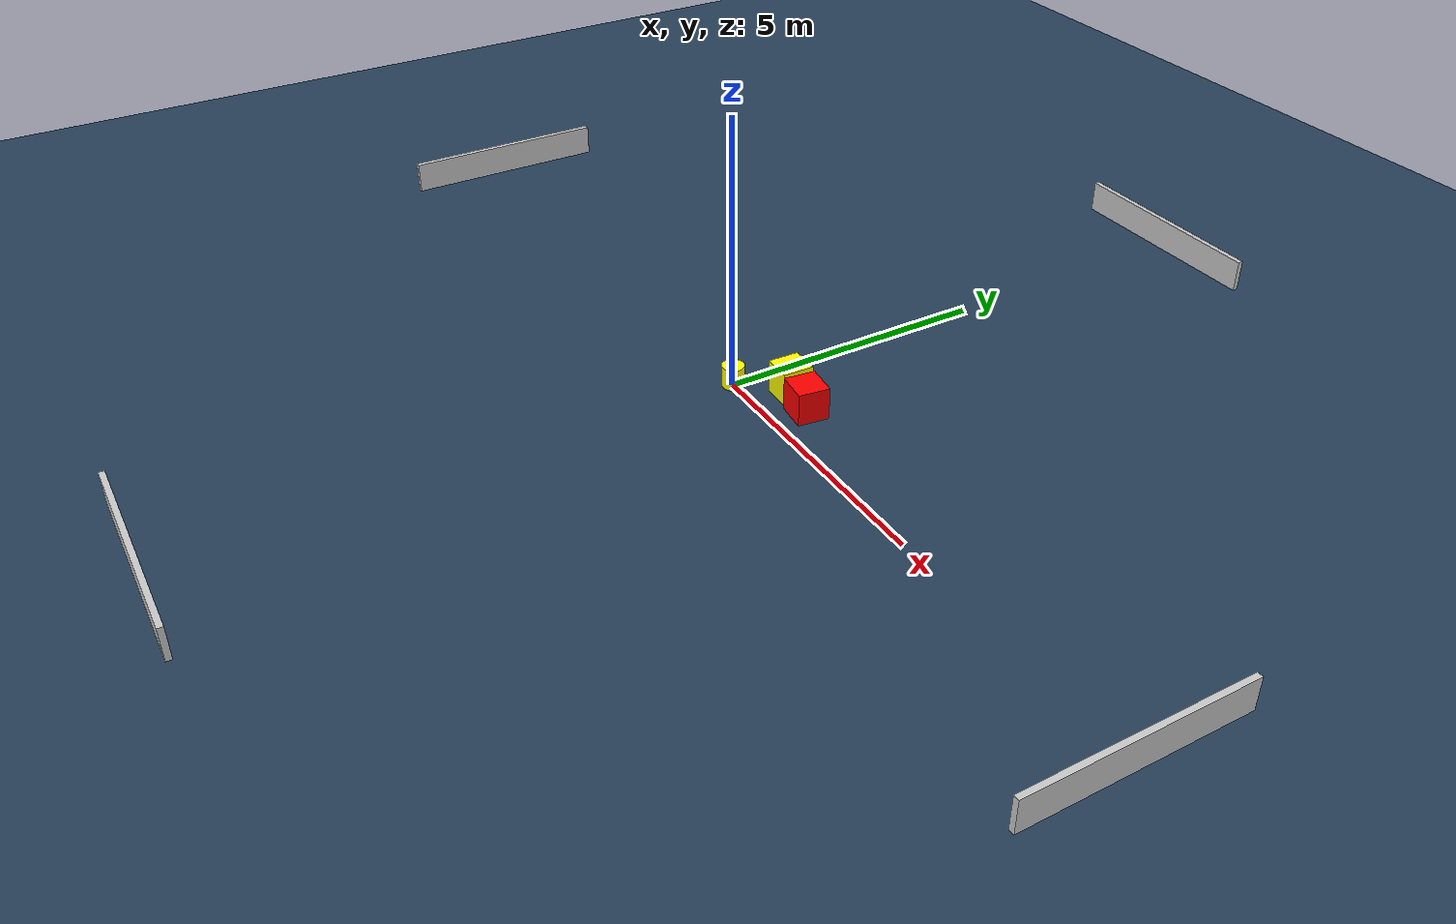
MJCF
<?xml version="1.0" ?>
<mujoco model="generated_environment">
  <option timestep="0.01" integrator="RK4" cone="elliptic"/>
  <default>
    <geom density="1"/>
  </default>
  <asset>
    <texture builtin="gradient" height="3072" name="skybox" rgb1="0.3 0.5 0.7" rgb2="0 0 0" type="skybox" width="512"/>
    <texture builtin="checker" height="300" name="groundplane" rgb1="0.2 0.3 0.4" rgb2="0.1 0.2 0.3" type="2d" width="300"/>
    <material name="groundplane" reflectance="0.2" texrepeat="5 5" texture="groundplane"/>
  </asset>
  <worldbody>
    <light dir="0 0 -1" directional="true" pos="0 0 1.5"/>
    <geom condim="3" friction="0.5 0.005 0.001" material="groundplane" name="floor" pos="0 0 0" size="0 0 0.05" type="plane"/>
    <body name="walls">
      <geom name="wall_1" condim="4" pos="-10.0 0.0 0.3" rgba="0.800000011920929 0.800000011920929 0.800000011920929 1.0" size="0.05 2.0 0.3" type="box"/>
      <geom name="wall_2" condim="4" pos="10.0 0.0 0.3" rgba="0.800000011920929 0.800000011920929 0.800000011920929 1.0" size="0.05 2.0 0.3" type="box"/>
      <geom name="wall_3" condim="4" pos="0.0 -10.0 0.3" rgba="0.800000011920929 0.800000011920929 0.800000011920929 1.0" size="2.0 0.05 0.3" type="box"/>
      <geom name="wall_4" condim="4" pos="0.0 10.0 0.3" rgba="0.800000011920929 0.800000011920929 0.800000011920929 1.0" size="2.0 0.05 0.3" type="box"/>
    </body>
    <body name="robot">
      <joint name="joint_x" type="slide" pos="0 0 0" axis="1 0 0"/>
      <joint name="joint_y" type="slide" pos="0 0 0" axis="0 1 0"/>
      <geom name="robot" type="cylinder" pos="0.0 0.0 0.2" size="0.2 0.2 0.0" mass="5.0" friction="1.0 0.005 0.0001" condim="4" rgba="1.0 1.0 0.0 1.0"/>
    </body>
    <body name="obstacle_1_movable">
      <geom name="obstacle_1_movable" condim="4" pos="0.7231497134637963 0.7176326780805192 0.3" euler="0 0 88.08283495866415" friction="0.0 0.005 0.001" rgba="1.0 1.0 0.0 1.0" size="0.28203975317203717 0.2579733524904776 0.3" type="box" mass="0.1"/>
      <joint type="free"/>
    </body>
    <body name="obstacle_2_static">
      <geom name="obstacle_2_static" condim="4" pos="1.3724402650466685 0.6223698537491532 0.3" euler="0 0 83.20713291007225" friction="0.0 0.005 0.001" rgba="1.0 0.0 0.0 1.0" size="0.28487929910263865 0.2903591160883081 0.3" type="box"/>
    </body>
  </worldbody>
  <actuator>
    <motor name="actuator_x" joint="joint_x" gear="1" ctrlrange="-1 1"/>
    <motor name="actuator_y" joint="joint_y" gear="1" ctrlrange="-1 1"/>
  </actuator>
</mujoco>
